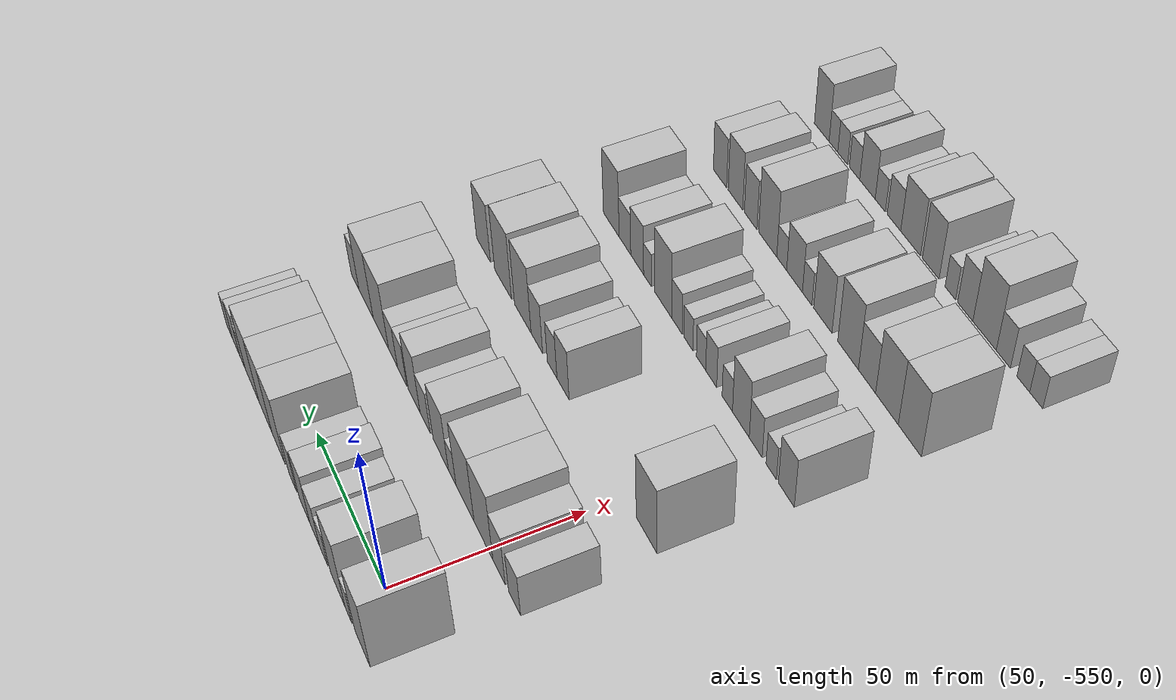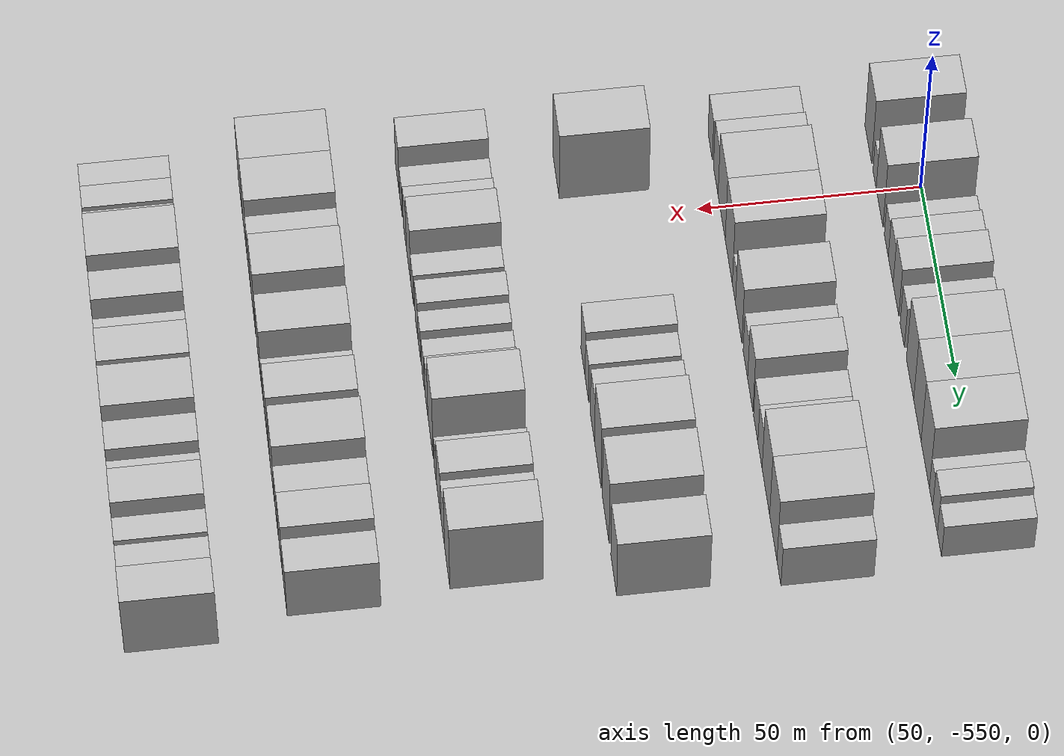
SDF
<sdf version="1.6">
 <world name="default">
  <model name="building_1">
   <static>1</static>
   <pose>50.0000 -562.8323 0 0.000000 0.000000 0.000000</pose>
   <link name="link">
    <pose>0 0 12.00 0 0 0</pose>
    <collision name="collision"><geometry><box><size>20.0000 10.3353 24.0000</size></box></geometry></collision>
    <visual name="visual">
     <cast_shadows>0</cast_shadows>
     <geometry><box><size>20.0000 10.3353 24.0000</size></box></geometry>
     <material>
      <script>
       <uri>model://HANNAS_wall/materials/scripts</uri>
       <uri>model://HANNAS_wall/materials/textures</uri>
       <name>vrc/HANNAS_wall</name>
      </script>
     </material>
    </visual>
   </link>
  </model>
  <model name="building_2">
   <static>1</static>
   <pose>50.0000 -553.2587 0 0.000000 0.000000 0.000000</pose>
   <link name="link">
    <pose>0 0 6.00 0 0 0</pose>
    <collision name="collision"><geometry><box><size>20.0000 4.8121 12.0000</size></box></geometry></collision>
    <visual name="visual">
     <cast_shadows>0</cast_shadows>
     <geometry><box><size>20.0000 4.8121 12.0000</size></box></geometry>
     <material>
      <script>
       <uri>model://HANNAS_wall/materials/scripts</uri>
       <uri>model://HANNAS_wall/materials/textures</uri>
       <name>vrc/HANNAS_wall</name>
      </script>
     </material>
    </visual>
   </link>
  </model>
  <model name="building_3">
   <static>1</static>
   <pose>50.0000 -545.6910 0 0.000000 0.000000 0.000000</pose>
   <link name="link">
    <pose>0 0 12.00 0 0 0</pose>
    <collision name="collision"><geometry><box><size>20.0000 10.3233 24.0000</size></box></geometry></collision>
    <visual name="visual">
     <cast_shadows>0</cast_shadows>
     <geometry><box><size>20.0000 10.3233 24.0000</size></box></geometry>
     <material>
      <script>
       <uri>model://HANNAS_wall/materials/scripts</uri>
       <uri>model://HANNAS_wall/materials/textures</uri>
       <name>vrc/HANNAS_wall</name>
      </script>
     </material>
    </visual>
   </link>
  </model>
  <model name="building_4">
   <static>1</static>
   <pose>50.0000 -535.5660 0 0.000000 0.000000 0.000000</pose>
   <link name="link">
    <pose>0 0 6.00 0 0 0</pose>
    <collision name="collision"><geometry><box><size>20.0000 5.9265 12.0000</size></box></geometry></collision>
    <visual name="visual">
     <cast_shadows>0</cast_shadows>
     <geometry><box><size>20.0000 5.9265 12.0000</size></box></geometry>
     <material>
      <script>
       <uri>model://HANNAS_wall/materials/scripts</uri>
       <uri>model://HANNAS_wall/materials/textures</uri>
       <name>vrc/HANNAS_wall</name>
      </script>
     </material>
    </visual>
   </link>
  </model>
  <model name="building_5">
   <static>1</static>
   <pose>50.0000 -529.0180 0 0.000000 0.000000 0.000000</pose>
   <link name="link">
    <pose>0 0 7.50 0 0 0</pose>
    <collision name="collision"><geometry><box><size>20.0000 7.1696 15.0000</size></box></geometry></collision>
    <visual name="visual">
     <cast_shadows>0</cast_shadows>
     <geometry><box><size>20.0000 7.1696 15.0000</size></box></geometry>
     <material>
      <script>
       <uri>model://HANNAS_wall/materials/scripts</uri>
       <uri>model://HANNAS_wall/materials/textures</uri>
       <name>vrc/HANNAS_wall</name>
      </script>
     </material>
    </visual>
   </link>
  </model>
  <model name="building_6">
   <static>1</static>
   <pose>50.0000 -521.2506 0 0.000000 0.000000 0.000000</pose>
   <link name="link">
    <pose>0 0 9.00 0 0 0</pose>
    <collision name="collision"><geometry><box><size>20.0000 8.3651 18.0000</size></box></geometry></collision>
    <visual name="visual">
     <cast_shadows>0</cast_shadows>
     <geometry><box><size>20.0000 8.3651 18.0000</size></box></geometry>
     <material>
      <script>
       <uri>model://HANNAS_wall/materials/scripts</uri>
       <uri>model://HANNAS_wall/materials/textures</uri>
       <name>vrc/HANNAS_wall</name>
      </script>
     </material>
    </visual>
   </link>
  </model>
  <model name="building_7">
   <static>1</static>
   <pose>50.0000 -511.9560 0 0.000000 0.000000 0.000000</pose>
   <link name="link">
    <pose>0 0 7.50 0 0 0</pose>
    <collision name="collision"><geometry><box><size>20.0000 6.2241 15.0000</size></box></geometry></collision>
    <visual name="visual">
     <cast_shadows>0</cast_shadows>
     <geometry><box><size>20.0000 6.2241 15.0000</size></box></geometry>
     <material>
      <script>
       <uri>model://HANNAS_wall/materials/scripts</uri>
       <uri>model://HANNAS_wall/materials/textures</uri>
       <name>vrc/HANNAS_wall</name>
      </script>
     </material>
    </visual>
   </link>
  </model>
  <model name="building_8">
   <static>1</static>
   <pose>50.0000 -500.5548 0 0.000000 0.000000 0.000000</pose>
   <link name="link">
    <pose>0 0 12.00 0 0 0</pose>
    <collision name="collision"><geometry><box><size>20.0000 10.5784 24.0000</size></box></geometry></collision>
    <visual name="visual">
     <cast_shadows>0</cast_shadows>
     <geometry><box><size>20.0000 10.5784 24.0000</size></box></geometry>
     <material>
      <script>
       <uri>model://HANNAS_wall/materials/scripts</uri>
       <uri>model://HANNAS_wall/materials/textures</uri>
       <name>vrc/HANNAS_wall</name>
      </script>
     </material>
    </visual>
   </link>
  </model>
  <model name="building_9">
   <static>1</static>
   <pose>50.0000 -489.8678 0 0.000000 0.000000 0.000000</pose>
   <link name="link">
    <pose>0 0 12.00 0 0 0</pose>
    <collision name="collision"><geometry><box><size>20.0000 10.7955 24.0000</size></box></geometry></collision>
    <visual name="visual">
     <cast_shadows>0</cast_shadows>
     <geometry><box><size>20.0000 10.7955 24.0000</size></box></geometry>
     <material>
      <script>
       <uri>model://HANNAS_wall/materials/scripts</uri>
       <uri>model://HANNAS_wall/materials/textures</uri>
       <name>vrc/HANNAS_wall</name>
      </script>
     </material>
    </visual>
   </link>
  </model>
  <model name="building_10">
   <static>1</static>
   <pose>50.0000 -478.5496 0 0.000000 0.000000 0.000000</pose>
   <link name="link">
    <pose>0 0 12.00 0 0 0</pose>
    <collision name="collision"><geometry><box><size>20.0000 11.8408 24.0000</size></box></geometry></collision>
    <visual name="visual">
     <cast_shadows>0</cast_shadows>
     <geometry><box><size>20.0000 11.8408 24.0000</size></box></geometry>
     <material>
      <script>
       <uri>model://HANNAS_wall/materials/scripts</uri>
       <uri>model://HANNAS_wall/materials/textures</uri>
       <name>vrc/HANNAS_wall</name>
      </script>
     </material>
    </visual>
   </link>
  </model>
  <model name="building_11">
   <static>1</static>
   <pose>50.0000 -470.2141 0 0.000000 0.000000 0.000000</pose>
   <link name="link">
    <pose>0 0 6.00 0 0 0</pose>
    <collision name="collision"><geometry><box><size>20.0000 4.8303 12.0000</size></box></geometry></collision>
    <visual name="visual">
     <cast_shadows>0</cast_shadows>
     <geometry><box><size>20.0000 4.8303 12.0000</size></box></geometry>
     <material>
      <script>
       <uri>model://HANNAS_wall/materials/scripts</uri>
       <uri>model://HANNAS_wall/materials/textures</uri>
       <name>vrc/HANNAS_wall</name>
      </script>
     </material>
    </visual>
   </link>
  </model>
  <model name="building_12">
   <static>1</static>
   <pose>50.0000 -464.5048 0 0.000000 0.000000 0.000000</pose>
   <link name="link">
    <pose>0 0 7.50 0 0 0</pose>
    <collision name="collision"><geometry><box><size>20.0000 6.5882 15.0000</size></box></geometry></collision>
    <visual name="visual">
     <cast_shadows>0</cast_shadows>
     <geometry><box><size>20.0000 6.5882 15.0000</size></box></geometry>
     <material>
      <script>
       <uri>model://HANNAS_wall/materials/scripts</uri>
       <uri>model://HANNAS_wall/materials/textures</uri>
       <name>vrc/HANNAS_wall</name>
      </script>
     </material>
    </visual>
   </link>
  </model>
  <model name="building_13">
   <static>1</static>
   <pose>50.0000 -458.3120 0 0.000000 0.000000 0.000000</pose>
   <link name="link">
    <pose>0 0 6.00 0 0 0</pose>
    <collision name="collision"><geometry><box><size>20.0000 5.7974 12.0000</size></box></geometry></collision>
    <visual name="visual">
     <cast_shadows>0</cast_shadows>
     <geometry><box><size>20.0000 5.7974 12.0000</size></box></geometry>
     <material>
      <script>
       <uri>model://HANNAS_wall/materials/scripts</uri>
       <uri>model://HANNAS_wall/materials/textures</uri>
       <name>vrc/HANNAS_wall</name>
      </script>
     </material>
    </visual>
   </link>
  </model>
  <model name="building_131">
   <static>1</static>
   <pose>85.0000 -566.4186 0 0.000000 0.000000 0.000000</pose>
   <link name="link">
    <pose>0 0 7.50 0 0 0</pose>
    <collision name="collision"><geometry><box><size>20.0000 7.1627 15.0000</size></box></geometry></collision>
    <visual name="visual">
     <cast_shadows>0</cast_shadows>
     <geometry><box><size>20.0000 7.1627 15.0000</size></box></geometry>
     <material>
      <script>
       <uri>model://HANNAS_wall/materials/scripts</uri>
       <uri>model://HANNAS_wall/materials/textures</uri>
       <name>vrc/HANNAS_wall</name>
      </script>
     </material>
    </visual>
   </link>
  </model>
  <model name="building_132">
   <static>1</static>
   <pose>85.0000 -557.0410 0 0.000000 0.000000 0.000000</pose>
   <link name="link">
    <pose>0 0 9.00 0 0 0</pose>
    <collision name="collision"><geometry><box><size>20.0000 7.5925 18.0000</size></box></geometry></collision>
    <visual name="visual">
     <cast_shadows>0</cast_shadows>
     <geometry><box><size>20.0000 7.5925 18.0000</size></box></geometry>
     <material>
      <script>
       <uri>model://HANNAS_wall/materials/scripts</uri>
       <uri>model://HANNAS_wall/materials/textures</uri>
       <name>vrc/HANNAS_wall</name>
      </script>
     </material>
    </visual>
   </link>
  </model>
  <model name="building_133">
   <static>1</static>
   <pose>85.0000 -547.3091 0 0.000000 0.000000 0.000000</pose>
   <link name="link">
    <pose>0 0 12.00 0 0 0</pose>
    <collision name="collision"><geometry><box><size>20.0000 11.8714 24.0000</size></box></geometry></collision>
    <visual name="visual">
     <cast_shadows>0</cast_shadows>
     <geometry><box><size>20.0000 11.8714 24.0000</size></box></geometry>
     <material>
      <script>
       <uri>model://HANNAS_wall/materials/scripts</uri>
       <uri>model://HANNAS_wall/materials/textures</uri>
       <name>vrc/HANNAS_wall</name>
      </script>
     </material>
    </visual>
   </link>
  </model>
  <model name="building_134">
   <static>1</static>
   <pose>85.0000 -535.4757 0 0.000000 0.000000 0.000000</pose>
   <link name="link">
    <pose>0 0 12.00 0 0 0</pose>
    <collision name="collision"><geometry><box><size>20.0000 11.7954 24.0000</size></box></geometry></collision>
    <visual name="visual">
     <cast_shadows>0</cast_shadows>
     <geometry><box><size>20.0000 11.7954 24.0000</size></box></geometry>
     <material>
      <script>
       <uri>model://HANNAS_wall/materials/scripts</uri>
       <uri>model://HANNAS_wall/materials/textures</uri>
       <name>vrc/HANNAS_wall</name>
      </script>
     </material>
    </visual>
   </link>
  </model>
  <model name="building_135">
   <static>1</static>
   <pose>85.0000 -527.0134 0 0.000000 0.000000 0.000000</pose>
   <link name="link">
    <pose>0 0 6.00 0 0 0</pose>
    <collision name="collision"><geometry><box><size>20.0000 5.1292 12.0000</size></box></geometry></collision>
    <visual name="visual">
     <cast_shadows>0</cast_shadows>
     <geometry><box><size>20.0000 5.1292 12.0000</size></box></geometry>
     <material>
      <script>
       <uri>model://HANNAS_wall/materials/scripts</uri>
       <uri>model://HANNAS_wall/materials/textures</uri>
       <name>vrc/HANNAS_wall</name>
      </script>
     </material>
    </visual>
   </link>
  </model>
  <model name="building_136">
   <static>1</static>
   <pose>85.0000 -519.2457 0 0.000000 0.000000 0.000000</pose>
   <link name="link">
    <pose>0 0 10.50 0 0 0</pose>
    <collision name="collision"><geometry><box><size>20.0000 10.4062 21.0000</size></box></geometry></collision>
    <visual name="visual">
     <cast_shadows>0</cast_shadows>
     <geometry><box><size>20.0000 10.4062 21.0000</size></box></geometry>
     <material>
      <script>
       <uri>model://HANNAS_wall/materials/scripts</uri>
       <uri>model://HANNAS_wall/materials/textures</uri>
       <name>vrc/HANNAS_wall</name>
      </script>
     </material>
    </visual>
   </link>
  </model>
  <model name="building_137">
   <static>1</static>
   <pose>85.0000 -508.4442 0 0.000000 0.000000 0.000000</pose>
   <link name="link">
    <pose>0 0 7.50 0 0 0</pose>
    <collision name="collision"><geometry><box><size>20.0000 7.1969 15.0000</size></box></geometry></collision>
    <visual name="visual">
     <cast_shadows>0</cast_shadows>
     <geometry><box><size>20.0000 7.1969 15.0000</size></box></geometry>
     <material>
      <script>
       <uri>model://HANNAS_wall/materials/scripts</uri>
       <uri>model://HANNAS_wall/materials/textures</uri>
       <name>vrc/HANNAS_wall</name>
      </script>
     </material>
    </visual>
   </link>
  </model>
  <model name="building_138">
   <static>1</static>
   <pose>85.0000 -500.5424 0 0.000000 0.000000 0.000000</pose>
   <link name="link">
    <pose>0 0 10.50 0 0 0</pose>
    <collision name="collision"><geometry><box><size>20.0000 8.6066 21.0000</size></box></geometry></collision>
    <visual name="visual">
     <cast_shadows>0</cast_shadows>
     <geometry><box><size>20.0000 8.6066 21.0000</size></box></geometry>
     <material>
      <script>
       <uri>model://HANNAS_wall/materials/scripts</uri>
       <uri>model://HANNAS_wall/materials/textures</uri>
       <name>vrc/HANNAS_wall</name>
      </script>
     </material>
    </visual>
   </link>
  </model>
  <model name="building_139">
   <static>1</static>
   <pose>85.0000 -491.7993 0 0.000000 0.000000 0.000000</pose>
   <link name="link">
    <pose>0 0 7.50 0 0 0</pose>
    <collision name="collision"><geometry><box><size>20.0000 6.8798 15.0000</size></box></geometry></collision>
    <visual name="visual">
     <cast_shadows>0</cast_shadows>
     <geometry><box><size>20.0000 6.8798 15.0000</size></box></geometry>
     <material>
      <script>
       <uri>model://HANNAS_wall/materials/scripts</uri>
       <uri>model://HANNAS_wall/materials/textures</uri>
       <name>vrc/HANNAS_wall</name>
      </script>
     </material>
    </visual>
   </link>
  </model>
  <model name="building_140">
   <static>1</static>
   <pose>85.0000 -485.0322 0 0.000000 0.000000 0.000000</pose>
   <link name="link">
    <pose>0 0 7.50 0 0 0</pose>
    <collision name="collision"><geometry><box><size>20.0000 6.6544 15.0000</size></box></geometry></collision>
    <visual name="visual">
     <cast_shadows>0</cast_shadows>
     <geometry><box><size>20.0000 6.6544 15.0000</size></box></geometry>
     <material>
      <script>
       <uri>model://HANNAS_wall/materials/scripts</uri>
       <uri>model://HANNAS_wall/materials/textures</uri>
       <name>vrc/HANNAS_wall</name>
      </script>
     </material>
    </visual>
   </link>
  </model>
  <model name="building_141">
   <static>1</static>
   <pose>85.0000 -475.7824 0 0.000000 0.000000 0.000000</pose>
   <link name="link">
    <pose>0 0 12.00 0 0 0</pose>
    <collision name="collision"><geometry><box><size>20.0000 11.8452 24.0000</size></box></geometry></collision>
    <visual name="visual">
     <cast_shadows>0</cast_shadows>
     <geometry><box><size>20.0000 11.8452 24.0000</size></box></geometry>
     <material>
      <script>
       <uri>model://HANNAS_wall/materials/scripts</uri>
       <uri>model://HANNAS_wall/materials/textures</uri>
       <name>vrc/HANNAS_wall</name>
      </script>
     </material>
    </visual>
   </link>
  </model>
  <model name="building_142">
   <static>1</static>
   <pose>85.0000 -464.1575 0 0.000000 0.000000 0.000000</pose>
   <link name="link">
    <pose>0 0 12.00 0 0 0</pose>
    <collision name="collision"><geometry><box><size>20.0000 11.4046 24.0000</size></box></geometry></collision>
    <visual name="visual">
     <cast_shadows>0</cast_shadows>
     <geometry><box><size>20.0000 11.4046 24.0000</size></box></geometry>
     <material>
      <script>
       <uri>model://HANNAS_wall/materials/scripts</uri>
       <uri>model://HANNAS_wall/materials/textures</uri>
       <name>vrc/HANNAS_wall</name>
      </script>
     </material>
    </visual>
   </link>
  </model>
  <model name="building_143">
   <static>1</static>
   <pose>85.0000 -455.3902 0 0.000000 0.000000 0.000000</pose>
   <link name="link">
    <pose>0 0 7.50 0 0 0</pose>
    <collision name="collision"><geometry><box><size>20.0000 6.1301 15.0000</size></box></geometry></collision>
    <visual name="visual">
     <cast_shadows>0</cast_shadows>
     <geometry><box><size>20.0000 6.1301 15.0000</size></box></geometry>
     <material>
      <script>
       <uri>model://HANNAS_wall/materials/scripts</uri>
       <uri>model://HANNAS_wall/materials/textures</uri>
       <name>vrc/HANNAS_wall</name>
      </script>
     </material>
    </visual>
   </link>
  </model>
  <model name="building_248">
   <static>1</static>
   <pose>120.0000 -562.2762 0 0.000000 0.000000 0.000000</pose>
   <link name="link">
    <pose>0 0 12.00 0 0 0</pose>
    <collision name="collision"><geometry><box><size>20.0000 11.4477 24.0000</size></box></geometry></collision>
    <visual name="visual">
     <cast_shadows>0</cast_shadows>
     <geometry><box><size>20.0000 11.4477 24.0000</size></box></geometry>
     <material>
      <script>
       <uri>model://HANNAS_wall/materials/scripts</uri>
       <uri>model://HANNAS_wall/materials/textures</uri>
       <name>vrc/HANNAS_wall</name>
      </script>
     </material>
    </visual>
   </link>
  </model>
  <model name="building_249">
   <static>1</static>
   <pose>120.0000 -512.9852 0 0.000000 0.000000 0.000000</pose>
   <link name="link">
    <pose>0 0 9.00 0 0 0</pose>
    <collision name="collision"><geometry><box><size>20.0000 7.7114 18.0000</size></box></geometry></collision>
    <visual name="visual">
     <cast_shadows>0</cast_shadows>
     <geometry><box><size>20.0000 7.7114 18.0000</size></box></geometry>
     <material>
      <script>
       <uri>model://HANNAS_wall/materials/scripts</uri>
       <uri>model://HANNAS_wall/materials/textures</uri>
       <name>vrc/HANNAS_wall</name>
      </script>
     </material>
    </visual>
   </link>
  </model>
  <model name="building_250">
   <static>1</static>
   <pose>120.0000 -506.0079 0 0.000000 0.000000 0.000000</pose>
   <link name="link">
    <pose>0 0 7.50 0 0 0</pose>
    <collision name="collision"><geometry><box><size>20.0000 6.2433 15.0000</size></box></geometry></collision>
    <visual name="visual">
     <cast_shadows>0</cast_shadows>
     <geometry><box><size>20.0000 6.2433 15.0000</size></box></geometry>
     <material>
      <script>
       <uri>model://HANNAS_wall/materials/scripts</uri>
       <uri>model://HANNAS_wall/materials/textures</uri>
       <name>vrc/HANNAS_wall</name>
      </script>
     </material>
    </visual>
   </link>
  </model>
  <model name="building_251">
   <static>1</static>
   <pose>120.0000 -496.0637 0 0.000000 0.000000 0.000000</pose>
   <link name="link">
    <pose>0 0 9.00 0 0 0</pose>
    <collision name="collision"><geometry><box><size>20.0000 7.6452 18.0000</size></box></geometry></collision>
    <visual name="visual">
     <cast_shadows>0</cast_shadows>
     <geometry><box><size>20.0000 7.6452 18.0000</size></box></geometry>
     <material>
      <script>
       <uri>model://HANNAS_wall/materials/scripts</uri>
       <uri>model://HANNAS_wall/materials/textures</uri>
       <name>vrc/HANNAS_wall</name>
      </script>
     </material>
    </visual>
   </link>
  </model>
  <model name="building_252">
   <static>1</static>
   <pose>120.0000 -486.5959 0 0.000000 0.000000 0.000000</pose>
   <link name="link">
    <pose>0 0 12.00 0 0 0</pose>
    <collision name="collision"><geometry><box><size>20.0000 11.2903 24.0000</size></box></geometry></collision>
    <visual name="visual">
     <cast_shadows>0</cast_shadows>
     <geometry><box><size>20.0000 11.2903 24.0000</size></box></geometry>
     <material>
      <script>
       <uri>model://HANNAS_wall/materials/scripts</uri>
       <uri>model://HANNAS_wall/materials/textures</uri>
       <name>vrc/HANNAS_wall</name>
      </script>
     </material>
    </visual>
   </link>
  </model>
  <model name="building_253">
   <static>1</static>
   <pose>120.0000 -473.0051 0 0.000000 0.000000 0.000000</pose>
   <link name="link">
    <pose>0 0 12.00 0 0 0</pose>
    <collision name="collision"><geometry><box><size>20.0000 11.8915 24.0000</size></box></geometry></collision>
    <visual name="visual">
     <cast_shadows>0</cast_shadows>
     <geometry><box><size>20.0000 11.8915 24.0000</size></box></geometry>
     <material>
      <script>
       <uri>model://HANNAS_wall/materials/scripts</uri>
       <uri>model://HANNAS_wall/materials/textures</uri>
       <name>vrc/HANNAS_wall</name>
      </script>
     </material>
    </visual>
   </link>
  </model>
  <model name="building_254">
   <static>1</static>
   <pose>120.0000 -459.0033 0 0.000000 0.000000 0.000000</pose>
   <link name="link">
    <pose>0 0 10.50 0 0 0</pose>
    <collision name="collision"><geometry><box><size>20.0000 10.1121 21.0000</size></box></geometry></collision>
    <visual name="visual">
     <cast_shadows>0</cast_shadows>
     <geometry><box><size>20.0000 10.1121 21.0000</size></box></geometry>
     <material>
      <script>
       <uri>model://HANNAS_wall/materials/scripts</uri>
       <uri>model://HANNAS_wall/materials/textures</uri>
       <name>vrc/HANNAS_wall</name>
      </script>
     </material>
    </visual>
   </link>
  </model>
  <model name="building_362">
   <static>1</static>
   <pose>155.0000 -565.9865 0 0.000000 0.000000 0.000000</pose>
   <link name="link">
    <pose>0 0 9.00 0 0 0</pose>
    <collision name="collision"><geometry><box><size>20.0000 8.0269 18.0000</size></box></geometry></collision>
    <visual name="visual">
     <cast_shadows>0</cast_shadows>
     <geometry><box><size>20.0000 8.0269 18.0000</size></box></geometry>
     <material>
      <script>
       <uri>model://HANNAS_wall/materials/scripts</uri>
       <uri>model://HANNAS_wall/materials/textures</uri>
       <name>vrc/HANNAS_wall</name>
      </script>
     </material>
    </visual>
   </link>
  </model>
  <model name="building_363">
   <static>1</static>
   <pose>155.0000 -558.2904 0 0.000000 0.000000 0.000000</pose>
   <link name="link">
    <pose>0 0 6.00 0 0 0</pose>
    <collision name="collision"><geometry><box><size>20.0000 5.3653 12.0000</size></box></geometry></collision>
    <visual name="visual">
     <cast_shadows>0</cast_shadows>
     <geometry><box><size>20.0000 5.3653 12.0000</size></box></geometry>
     <material>
      <script>
       <uri>model://HANNAS_wall/materials/scripts</uri>
       <uri>model://HANNAS_wall/materials/textures</uri>
       <name>vrc/HANNAS_wall</name>
      </script>
     </material>
    </visual>
   </link>
  </model>
  <model name="building_364">
   <static>1</static>
   <pose>155.0000 -550.2143 0 0.000000 0.000000 0.000000</pose>
   <link name="link">
    <pose>0 0 7.50 0 0 0</pose>
    <collision name="collision"><geometry><box><size>20.0000 6.7869 15.0000</size></box></geometry></collision>
    <visual name="visual">
     <cast_shadows>0</cast_shadows>
     <geometry><box><size>20.0000 6.7869 15.0000</size></box></geometry>
     <material>
      <script>
       <uri>model://HANNAS_wall/materials/scripts</uri>
       <uri>model://HANNAS_wall/materials/textures</uri>
       <name>vrc/HANNAS_wall</name>
      </script>
     </material>
    </visual>
   </link>
  </model>
  <model name="building_365">
   <static>1</static>
   <pose>155.0000 -542.2878 0 0.000000 0.000000 0.000000</pose>
   <link name="link">
    <pose>0 0 10.50 0 0 0</pose>
    <collision name="collision"><geometry><box><size>20.0000 9.0662 21.0000</size></box></geometry></collision>
    <visual name="visual">
     <cast_shadows>0</cast_shadows>
     <geometry><box><size>20.0000 9.0662 21.0000</size></box></geometry>
     <material>
      <script>
       <uri>model://HANNAS_wall/materials/scripts</uri>
       <uri>model://HANNAS_wall/materials/textures</uri>
       <name>vrc/HANNAS_wall</name>
      </script>
     </material>
    </visual>
   </link>
  </model>
  <model name="building_366">
   <static>1</static>
   <pose>155.0000 -534.8938 0 0.000000 0.000000 0.000000</pose>
   <link name="link">
    <pose>0 0 6.00 0 0 0</pose>
    <collision name="collision"><geometry><box><size>20.0000 5.7220 12.0000</size></box></geometry></collision>
    <visual name="visual">
     <cast_shadows>0</cast_shadows>
     <geometry><box><size>20.0000 5.7220 12.0000</size></box></geometry>
     <material>
      <script>
       <uri>model://HANNAS_wall/materials/scripts</uri>
       <uri>model://HANNAS_wall/materials/textures</uri>
       <name>vrc/HANNAS_wall</name>
      </script>
     </material>
    </visual>
   </link>
  </model>
  <model name="building_367">
   <static>1</static>
   <pose>155.0000 -525.9514 0 0.000000 0.000000 0.000000</pose>
   <link name="link">
    <pose>0 0 7.50 0 0 0</pose>
    <collision name="collision"><geometry><box><size>20.0000 6.1628 15.0000</size></box></geometry></collision>
    <visual name="visual">
     <cast_shadows>0</cast_shadows>
     <geometry><box><size>20.0000 6.1628 15.0000</size></box></geometry>
     <material>
      <script>
       <uri>model://HANNAS_wall/materials/scripts</uri>
       <uri>model://HANNAS_wall/materials/textures</uri>
       <name>vrc/HANNAS_wall</name>
      </script>
     </material>
    </visual>
   </link>
  </model>
  <model name="building_368">
   <static>1</static>
   <pose>155.0000 -520.2103 0 0.000000 0.000000 0.000000</pose>
   <link name="link">
    <pose>0 0 6.00 0 0 0</pose>
    <collision name="collision"><geometry><box><size>20.0000 5.3193 12.0000</size></box></geometry></collision>
    <visual name="visual">
     <cast_shadows>0</cast_shadows>
     <geometry><box><size>20.0000 5.3193 12.0000</size></box></geometry>
     <material>
      <script>
       <uri>model://HANNAS_wall/materials/scripts</uri>
       <uri>model://HANNAS_wall/materials/textures</uri>
       <name>vrc/HANNAS_wall</name>
      </script>
     </material>
    </visual>
   </link>
  </model>
  <model name="building_369">
   <static>1</static>
   <pose>155.0000 -512.9075 0 0.000000 0.000000 0.000000</pose>
   <link name="link">
    <pose>0 0 6.00 0 0 0</pose>
    <collision name="collision"><geometry><box><size>20.0000 5.2864 12.0000</size></box></geometry></collision>
    <visual name="visual">
     <cast_shadows>0</cast_shadows>
     <geometry><box><size>20.0000 5.2864 12.0000</size></box></geometry>
     <material>
      <script>
       <uri>model://HANNAS_wall/materials/scripts</uri>
       <uri>model://HANNAS_wall/materials/textures</uri>
       <name>vrc/HANNAS_wall</name>
      </script>
     </material>
    </visual>
   </link>
  </model>
  <model name="building_370">
   <static>1</static>
   <pose>155.0000 -506.1717 0 0.000000 0.000000 0.000000</pose>
   <link name="link">
    <pose>0 0 7.50 0 0 0</pose>
    <collision name="collision"><geometry><box><size>20.0000 6.1853 15.0000</size></box></geometry></collision>
    <visual name="visual">
     <cast_shadows>0</cast_shadows>
     <geometry><box><size>20.0000 6.1853 15.0000</size></box></geometry>
     <material>
      <script>
       <uri>model://HANNAS_wall/materials/scripts</uri>
       <uri>model://HANNAS_wall/materials/textures</uri>
       <name>vrc/HANNAS_wall</name>
      </script>
     </material>
    </visual>
   </link>
  </model>
  <model name="building_371">
   <static>1</static>
   <pose>155.0000 -497.8439 0 0.000000 0.000000 0.000000</pose>
   <link name="link">
    <pose>0 0 12.00 0 0 0</pose>
    <collision name="collision"><geometry><box><size>20.0000 10.4702 24.0000</size></box></geometry></collision>
    <visual name="visual">
     <cast_shadows>0</cast_shadows>
     <geometry><box><size>20.0000 10.4702 24.0000</size></box></geometry>
     <material>
      <script>
       <uri>model://HANNAS_wall/materials/scripts</uri>
       <uri>model://HANNAS_wall/materials/textures</uri>
       <name>vrc/HANNAS_wall</name>
      </script>
     </material>
    </visual>
   </link>
  </model>
  <model name="building_372">
   <static>1</static>
   <pose>155.0000 -488.2043 0 0.000000 0.000000 0.000000</pose>
   <link name="link">
    <pose>0 0 6.00 0 0 0</pose>
    <collision name="collision"><geometry><box><size>20.0000 4.8091 12.0000</size></box></geometry></collision>
    <visual name="visual">
     <cast_shadows>0</cast_shadows>
     <geometry><box><size>20.0000 4.8091 12.0000</size></box></geometry>
     <material>
      <script>
       <uri>model://HANNAS_wall/materials/scripts</uri>
       <uri>model://HANNAS_wall/materials/textures</uri>
       <name>vrc/HANNAS_wall</name>
      </script>
     </material>
    </visual>
   </link>
  </model>
  <model name="building_373">
   <static>1</static>
   <pose>155.0000 -481.7441 0 0.000000 0.000000 0.000000</pose>
   <link name="link">
    <pose>0 0 9.00 0 0 0</pose>
    <collision name="collision"><geometry><box><size>20.0000 8.1113 18.0000</size></box></geometry></collision>
    <visual name="visual">
     <cast_shadows>0</cast_shadows>
     <geometry><box><size>20.0000 8.1113 18.0000</size></box></geometry>
     <material>
      <script>
       <uri>model://HANNAS_wall/materials/scripts</uri>
       <uri>model://HANNAS_wall/materials/textures</uri>
       <name>vrc/HANNAS_wall</name>
      </script>
     </material>
    </visual>
   </link>
  </model>
  <model name="building_374">
   <static>1</static>
   <pose>155.0000 -473.9432 0 0.000000 0.000000 0.000000</pose>
   <link name="link">
    <pose>0 0 7.50 0 0 0</pose>
    <collision name="collision"><geometry><box><size>20.0000 7.4904 15.0000</size></box></geometry></collision>
    <visual name="visual">
     <cast_shadows>0</cast_shadows>
     <geometry><box><size>20.0000 7.4904 15.0000</size></box></geometry>
     <material>
      <script>
       <uri>model://HANNAS_wall/materials/scripts</uri>
       <uri>model://HANNAS_wall/materials/textures</uri>
       <name>vrc/HANNAS_wall</name>
      </script>
     </material>
    </visual>
   </link>
  </model>
  <model name="building_375">
   <static>1</static>
   <pose>155.0000 -465.0239 0 0.000000 0.000000 0.000000</pose>
   <link name="link">
    <pose>0 0 12.00 0 0 0</pose>
    <collision name="collision"><geometry><box><size>20.0000 10.3484 24.0000</size></box></geometry></collision>
    <visual name="visual">
     <cast_shadows>0</cast_shadows>
     <geometry><box><size>20.0000 10.3484 24.0000</size></box></geometry>
     <material>
      <script>
       <uri>model://HANNAS_wall/materials/scripts</uri>
       <uri>model://HANNAS_wall/materials/textures</uri>
       <name>vrc/HANNAS_wall</name>
      </script>
     </material>
    </visual>
   </link>
  </model>
  <model name="building_486">
   <static>1</static>
   <pose>190.0000 -564.4830 0 0.000000 0.000000 0.000000</pose>
   <link name="link">
    <pose>0 0 12.00 0 0 0</pose>
    <collision name="collision"><geometry><box><size>20.0000 11.0341 24.0000</size></box></geometry></collision>
    <visual name="visual">
     <cast_shadows>0</cast_shadows>
     <geometry><box><size>20.0000 11.0341 24.0000</size></box></geometry>
     <material>
      <script>
       <uri>model://HANNAS_wall/materials/scripts</uri>
       <uri>model://HANNAS_wall/materials/textures</uri>
       <name>vrc/HANNAS_wall</name>
      </script>
     </material>
    </visual>
   </link>
  </model>
  <model name="building_487">
   <static>1</static>
   <pose>190.0000 -553.4094 0 0.000000 0.000000 0.000000</pose>
   <link name="link">
    <pose>0 0 12.00 0 0 0</pose>
    <collision name="collision"><geometry><box><size>20.0000 11.1131 24.0000</size></box></geometry></collision>
    <visual name="visual">
     <cast_shadows>0</cast_shadows>
     <geometry><box><size>20.0000 11.1131 24.0000</size></box></geometry>
     <material>
      <script>
       <uri>model://HANNAS_wall/materials/scripts</uri>
       <uri>model://HANNAS_wall/materials/textures</uri>
       <name>vrc/HANNAS_wall</name>
      </script>
     </material>
    </visual>
   </link>
  </model>
  <model name="building_488">
   <static>1</static>
   <pose>190.0000 -543.5260 0 0.000000 0.000000 0.000000</pose>
   <link name="link">
    <pose>0 0 9.00 0 0 0</pose>
    <collision name="collision"><geometry><box><size>20.0000 8.6537 18.0000</size></box></geometry></collision>
    <visual name="visual">
     <cast_shadows>0</cast_shadows>
     <geometry><box><size>20.0000 8.6537 18.0000</size></box></geometry>
     <material>
      <script>
       <uri>model://HANNAS_wall/materials/scripts</uri>
       <uri>model://HANNAS_wall/materials/textures</uri>
       <name>vrc/HANNAS_wall</name>
      </script>
     </material>
    </visual>
   </link>
  </model>
  <model name="building_489">
   <static>1</static>
   <pose>190.0000 -533.8617 0 0.000000 0.000000 0.000000</pose>
   <link name="link">
    <pose>0 0 12.00 0 0 0</pose>
    <collision name="collision"><geometry><box><size>20.0000 10.6749 24.0000</size></box></geometry></collision>
    <visual name="visual">
     <cast_shadows>0</cast_shadows>
     <geometry><box><size>20.0000 10.6749 24.0000</size></box></geometry>
     <material>
      <script>
       <uri>model://HANNAS_wall/materials/scripts</uri>
       <uri>model://HANNAS_wall/materials/textures</uri>
       <name>vrc/HANNAS_wall</name>
      </script>
     </material>
    </visual>
   </link>
  </model>
  <model name="building_490">
   <static>1</static>
   <pose>190.0000 -520.6262 0 0.000000 0.000000 0.000000</pose>
   <link name="link">
    <pose>0 0 10.50 0 0 0</pose>
    <collision name="collision"><geometry><box><size>20.0000 9.7960 21.0000</size></box></geometry></collision>
    <visual name="visual">
     <cast_shadows>0</cast_shadows>
     <geometry><box><size>20.0000 9.7960 21.0000</size></box></geometry>
     <material>
      <script>
       <uri>model://HANNAS_wall/materials/scripts</uri>
       <uri>model://HANNAS_wall/materials/textures</uri>
       <name>vrc/HANNAS_wall</name>
      </script>
     </material>
    </visual>
   </link>
  </model>
  <model name="building_491">
   <static>1</static>
   <pose>190.0000 -512.1441 0 0.000000 0.000000 0.000000</pose>
   <link name="link">
    <pose>0 0 6.00 0 0 0</pose>
    <collision name="collision"><geometry><box><size>20.0000 5.1683 12.0000</size></box></geometry></collision>
    <visual name="visual">
     <cast_shadows>0</cast_shadows>
     <geometry><box><size>20.0000 5.1683 12.0000</size></box></geometry>
     <material>
      <script>
       <uri>model://HANNAS_wall/materials/scripts</uri>
       <uri>model://HANNAS_wall/materials/textures</uri>
       <name>vrc/HANNAS_wall</name>
      </script>
     </material>
    </visual>
   </link>
  </model>
  <model name="building_492">
   <static>1</static>
   <pose>190.0000 -505.1693 0 0.000000 0.000000 0.000000</pose>
   <link name="link">
    <pose>0 0 9.00 0 0 0</pose>
    <collision name="collision"><geometry><box><size>20.0000 8.7813 18.0000</size></box></geometry></collision>
    <visual name="visual">
     <cast_shadows>0</cast_shadows>
     <geometry><box><size>20.0000 8.7813 18.0000</size></box></geometry>
     <material>
      <script>
       <uri>model://HANNAS_wall/materials/scripts</uri>
       <uri>model://HANNAS_wall/materials/textures</uri>
       <name>vrc/HANNAS_wall</name>
      </script>
     </material>
    </visual>
   </link>
  </model>
  <model name="building_493">
   <static>1</static>
   <pose>190.0000 -497.9772 0 0.000000 0.000000 0.000000</pose>
   <link name="link">
    <pose>0 0 6.00 0 0 0</pose>
    <collision name="collision"><geometry><box><size>20.0000 5.6029 12.0000</size></box></geometry></collision>
    <visual name="visual">
     <cast_shadows>0</cast_shadows>
     <geometry><box><size>20.0000 5.6029 12.0000</size></box></geometry>
     <material>
      <script>
       <uri>model://HANNAS_wall/materials/scripts</uri>
       <uri>model://HANNAS_wall/materials/textures</uri>
       <name>vrc/HANNAS_wall</name>
      </script>
     </material>
    </visual>
   </link>
  </model>
  <model name="building_494">
   <static>1</static>
   <pose>190.0000 -489.9319 0 0.000000 0.000000 0.000000</pose>
   <link name="link">
    <pose>0 0 12.00 0 0 0</pose>
    <collision name="collision"><geometry><box><size>20.0000 10.4878 24.0000</size></box></geometry></collision>
    <visual name="visual">
     <cast_shadows>0</cast_shadows>
     <geometry><box><size>20.0000 10.4878 24.0000</size></box></geometry>
     <material>
      <script>
       <uri>model://HANNAS_wall/materials/scripts</uri>
       <uri>model://HANNAS_wall/materials/textures</uri>
       <name>vrc/HANNAS_wall</name>
      </script>
     </material>
    </visual>
   </link>
  </model>
  <model name="building_495">
   <static>1</static>
   <pose>190.0000 -479.9706 0 0.000000 0.000000 0.000000</pose>
   <link name="link">
    <pose>0 0 9.00 0 0 0</pose>
    <collision name="collision"><geometry><box><size>20.0000 7.4347 18.0000</size></box></geometry></collision>
    <visual name="visual">
     <cast_shadows>0</cast_shadows>
     <geometry><box><size>20.0000 7.4347 18.0000</size></box></geometry>
     <material>
      <script>
       <uri>model://HANNAS_wall/materials/scripts</uri>
       <uri>model://HANNAS_wall/materials/textures</uri>
       <name>vrc/HANNAS_wall</name>
      </script>
     </material>
    </visual>
   </link>
  </model>
  <model name="building_496">
   <static>1</static>
   <pose>190.0000 -470.8657 0 0.000000 0.000000 0.000000</pose>
   <link name="link">
    <pose>0 0 10.50 0 0 0</pose>
    <collision name="collision"><geometry><box><size>20.0000 8.7751 21.0000</size></box></geometry></collision>
    <visual name="visual">
     <cast_shadows>0</cast_shadows>
     <geometry><box><size>20.0000 8.7751 21.0000</size></box></geometry>
     <material>
      <script>
       <uri>model://HANNAS_wall/materials/scripts</uri>
       <uri>model://HANNAS_wall/materials/textures</uri>
       <name>vrc/HANNAS_wall</name>
      </script>
     </material>
    </visual>
   </link>
  </model>
  <model name="building_497">
   <static>1</static>
   <pose>190.0000 -461.3909 0 0.000000 0.000000 0.000000</pose>
   <link name="link">
    <pose>0 0 9.00 0 0 0</pose>
    <collision name="collision"><geometry><box><size>20.0000 8.1746 18.0000</size></box></geometry></collision>
    <visual name="visual">
     <cast_shadows>0</cast_shadows>
     <geometry><box><size>20.0000 8.1746 18.0000</size></box></geometry>
     <material>
      <script>
       <uri>model://HANNAS_wall/materials/scripts</uri>
       <uri>model://HANNAS_wall/materials/textures</uri>
       <name>vrc/HANNAS_wall</name>
      </script>
     </material>
    </visual>
   </link>
  </model>
  <model name="building_607">
   <static>1</static>
   <pose>225.0000 -567.0557 0 0.000000 0.000000 0.000000</pose>
   <link name="link">
    <pose>0 0 6.00 0 0 0</pose>
    <collision name="collision"><geometry><box><size>20.0000 5.8886 12.0000</size></box></geometry></collision>
    <visual name="visual">
     <cast_shadows>0</cast_shadows>
     <geometry><box><size>20.0000 5.8886 12.0000</size></box></geometry>
     <material>
      <script>
       <uri>model://HANNAS_wall/materials/scripts</uri>
       <uri>model://HANNAS_wall/materials/textures</uri>
       <name>vrc/HANNAS_wall</name>
      </script>
     </material>
    </visual>
   </link>
  </model>
  <model name="building_608">
   <static>1</static>
   <pose>225.0000 -561.2175 0 0.000000 0.000000 0.000000</pose>
   <link name="link">
    <pose>0 0 6.00 0 0 0</pose>
    <collision name="collision"><geometry><box><size>20.0000 5.7878 12.0000</size></box></geometry></collision>
    <visual name="visual">
     <cast_shadows>0</cast_shadows>
     <geometry><box><size>20.0000 5.7878 12.0000</size></box></geometry>
     <material>
      <script>
       <uri>model://HANNAS_wall/materials/scripts</uri>
       <uri>model://HANNAS_wall/materials/textures</uri>
       <name>vrc/HANNAS_wall</name>
      </script>
     </material>
    </visual>
   </link>
  </model>
  <model name="building_609">
   <static>1</static>
   <pose>225.0000 -552.0369 0 0.000000 0.000000 0.000000</pose>
   <link name="link">
    <pose>0 0 7.50 0 0 0</pose>
    <collision name="collision"><geometry><box><size>20.0000 6.5733 15.0000</size></box></geometry></collision>
    <visual name="visual">
     <cast_shadows>0</cast_shadows>
     <geometry><box><size>20.0000 6.5733 15.0000</size></box></geometry>
     <material>
      <script>
       <uri>model://HANNAS_wall/materials/scripts</uri>
       <uri>model://HANNAS_wall/materials/textures</uri>
       <name>vrc/HANNAS_wall</name>
      </script>
     </material>
    </visual>
   </link>
  </model>
  <model name="building_610">
   <static>1</static>
   <pose>225.0000 -543.1726 0 0.000000 0.000000 0.000000</pose>
   <link name="link">
    <pose>0 0 12.00 0 0 0</pose>
    <collision name="collision"><geometry><box><size>20.0000 11.1554 24.0000</size></box></geometry></collision>
    <visual name="visual">
     <cast_shadows>0</cast_shadows>
     <geometry><box><size>20.0000 11.1554 24.0000</size></box></geometry>
     <material>
      <script>
       <uri>model://HANNAS_wall/materials/scripts</uri>
       <uri>model://HANNAS_wall/materials/textures</uri>
       <name>vrc/HANNAS_wall</name>
      </script>
     </material>
    </visual>
   </link>
  </model>
  <model name="building_611">
   <static>1</static>
   <pose>225.0000 -533.8791 0 0.000000 0.000000 0.000000</pose>
   <link name="link">
    <pose>0 0 9.00 0 0 0</pose>
    <collision name="collision"><geometry><box><size>20.0000 7.4317 18.0000</size></box></geometry></collision>
    <visual name="visual">
     <cast_shadows>0</cast_shadows>
     <geometry><box><size>20.0000 7.4317 18.0000</size></box></geometry>
     <material>
      <script>
       <uri>model://HANNAS_wall/materials/scripts</uri>
       <uri>model://HANNAS_wall/materials/textures</uri>
       <name>vrc/HANNAS_wall</name>
      </script>
     </material>
    </visual>
   </link>
  </model>
  <model name="building_612">
   <static>1</static>
   <pose>225.0000 -526.5498 0 0.000000 0.000000 0.000000</pose>
   <link name="link">
    <pose>0 0 6.00 0 0 0</pose>
    <collision name="collision"><geometry><box><size>20.0000 5.2268 12.0000</size></box></geometry></collision>
    <visual name="visual">
     <cast_shadows>0</cast_shadows>
     <geometry><box><size>20.0000 5.2268 12.0000</size></box></geometry>
     <material>
      <script>
       <uri>model://HANNAS_wall/materials/scripts</uri>
       <uri>model://HANNAS_wall/materials/textures</uri>
       <name>vrc/HANNAS_wall</name>
      </script>
     </material>
    </visual>
   </link>
  </model>
  <model name="building_613">
   <static>1</static>
   <pose>225.0000 -516.6621 0 0.000000 0.000000 0.000000</pose>
   <link name="link">
    <pose>0 0 10.50 0 0 0</pose>
    <collision name="collision"><geometry><box><size>20.0000 8.5485 21.0000</size></box></geometry></collision>
    <visual name="visual">
     <cast_shadows>0</cast_shadows>
     <geometry><box><size>20.0000 8.5485 21.0000</size></box></geometry>
     <material>
      <script>
       <uri>model://HANNAS_wall/materials/scripts</uri>
       <uri>model://HANNAS_wall/materials/textures</uri>
       <name>vrc/HANNAS_wall</name>
      </script>
     </material>
    </visual>
   </link>
  </model>
  <model name="building_614">
   <static>1</static>
   <pose>225.0000 -506.1975 0 0.000000 0.000000 0.000000</pose>
   <link name="link">
    <pose>0 0 10.50 0 0 0</pose>
    <collision name="collision"><geometry><box><size>20.0000 10.3807 21.0000</size></box></geometry></collision>
    <visual name="visual">
     <cast_shadows>0</cast_shadows>
     <geometry><box><size>20.0000 10.3807 21.0000</size></box></geometry>
     <material>
      <script>
       <uri>model://HANNAS_wall/materials/scripts</uri>
       <uri>model://HANNAS_wall/materials/textures</uri>
       <name>vrc/HANNAS_wall</name>
      </script>
     </material>
    </visual>
   </link>
  </model>
  <model name="building_615">
   <static>1</static>
   <pose>225.0000 -497.3903 0 0.000000 0.000000 0.000000</pose>
   <link name="link">
    <pose>0 0 7.50 0 0 0</pose>
    <collision name="collision"><geometry><box><size>20.0000 7.2338 15.0000</size></box></geometry></collision>
    <visual name="visual">
     <cast_shadows>0</cast_shadows>
     <geometry><box><size>20.0000 7.2338 15.0000</size></box></geometry>
     <material>
      <script>
       <uri>model://HANNAS_wall/materials/scripts</uri>
       <uri>model://HANNAS_wall/materials/textures</uri>
       <name>vrc/HANNAS_wall</name>
      </script>
     </material>
    </visual>
   </link>
  </model>
  <model name="building_616">
   <static>1</static>
   <pose>225.0000 -489.9921 0 0.000000 0.000000 0.000000</pose>
   <link name="link">
    <pose>0 0 6.00 0 0 0</pose>
    <collision name="collision"><geometry><box><size>20.0000 5.5627 12.0000</size></box></geometry></collision>
    <visual name="visual">
     <cast_shadows>0</cast_shadows>
     <geometry><box><size>20.0000 5.5627 12.0000</size></box></geometry>
     <material>
      <script>
       <uri>model://HANNAS_wall/materials/scripts</uri>
       <uri>model://HANNAS_wall/materials/textures</uri>
       <name>vrc/HANNAS_wall</name>
      </script>
     </material>
    </visual>
   </link>
  </model>
  <model name="building_617">
   <static>1</static>
   <pose>225.0000 -482.9260 0 0.000000 0.000000 0.000000</pose>
   <link name="link">
    <pose>0 0 9.00 0 0 0</pose>
    <collision name="collision"><geometry><box><size>20.0000 8.5694 18.0000</size></box></geometry></collision>
    <visual name="visual">
     <cast_shadows>0</cast_shadows>
     <geometry><box><size>20.0000 8.5694 18.0000</size></box></geometry>
     <material>
      <script>
       <uri>model://HANNAS_wall/materials/scripts</uri>
       <uri>model://HANNAS_wall/materials/textures</uri>
       <name>vrc/HANNAS_wall</name>
      </script>
     </material>
    </visual>
   </link>
  </model>
  <model name="building_618">
   <static>1</static>
   <pose>225.0000 -475.6984 0 0.000000 0.000000 0.000000</pose>
   <link name="link">
    <pose>0 0 6.00 0 0 0</pose>
    <collision name="collision"><geometry><box><size>20.0000 5.8857 12.0000</size></box></geometry></collision>
    <visual name="visual">
     <cast_shadows>0</cast_shadows>
     <geometry><box><size>20.0000 5.8857 12.0000</size></box></geometry>
     <material>
      <script>
       <uri>model://HANNAS_wall/materials/scripts</uri>
       <uri>model://HANNAS_wall/materials/textures</uri>
       <name>vrc/HANNAS_wall</name>
      </script>
     </material>
    </visual>
   </link>
  </model>
  <model name="building_619">
   <static>1</static>
   <pose>225.0000 -468.9432 0 0.000000 0.000000 0.000000</pose>
   <link name="link">
    <pose>0 0 6.00 0 0 0</pose>
    <collision name="collision"><geometry><box><size>20.0000 5.6249 12.0000</size></box></geometry></collision>
    <visual name="visual">
     <cast_shadows>0</cast_shadows>
     <geometry><box><size>20.0000 5.6249 12.0000</size></box></geometry>
     <material>
      <script>
       <uri>model://HANNAS_wall/materials/scripts</uri>
       <uri>model://HANNAS_wall/materials/textures</uri>
       <name>vrc/HANNAS_wall</name>
      </script>
     </material>
    </visual>
   </link>
  </model>
  <model name="building_620">
   <static>1</static>
   <pose>225.0000 -463.6110 0 0.000000 0.000000 0.000000</pose>
   <link name="link">
    <pose>0 0 6.00 0 0 0</pose>
    <collision name="collision"><geometry><box><size>20.0000 5.0395 12.0000</size></box></geometry></collision>
    <visual name="visual">
     <cast_shadows>0</cast_shadows>
     <geometry><box><size>20.0000 5.0395 12.0000</size></box></geometry>
     <material>
      <script>
       <uri>model://HANNAS_wall/materials/scripts</uri>
       <uri>model://HANNAS_wall/materials/textures</uri>
       <name>vrc/HANNAS_wall</name>
      </script>
     </material>
    </visual>
   </link>
  </model>
  <model name="building_621">
   <static>1</static>
   <pose>225.0000 -456.7421 0 0.000000 0.000000 0.000000</pose>
   <link name="link">
    <pose>0 0 10.50 0 0 0</pose>
    <collision name="collision"><geometry><box><size>20.0000 8.6983 21.0000</size></box></geometry></collision>
    <visual name="visual">
     <cast_shadows>0</cast_shadows>
     <geometry><box><size>20.0000 8.6983 21.0000</size></box></geometry>
     <material>
      <script>
       <uri>model://HANNAS_wall/materials/scripts</uri>
       <uri>model://HANNAS_wall/materials/textures</uri>
       <name>vrc/HANNAS_wall</name>
      </script>
     </material>
    </visual>
   </link>
  </model>
 </world>
</sdf>
